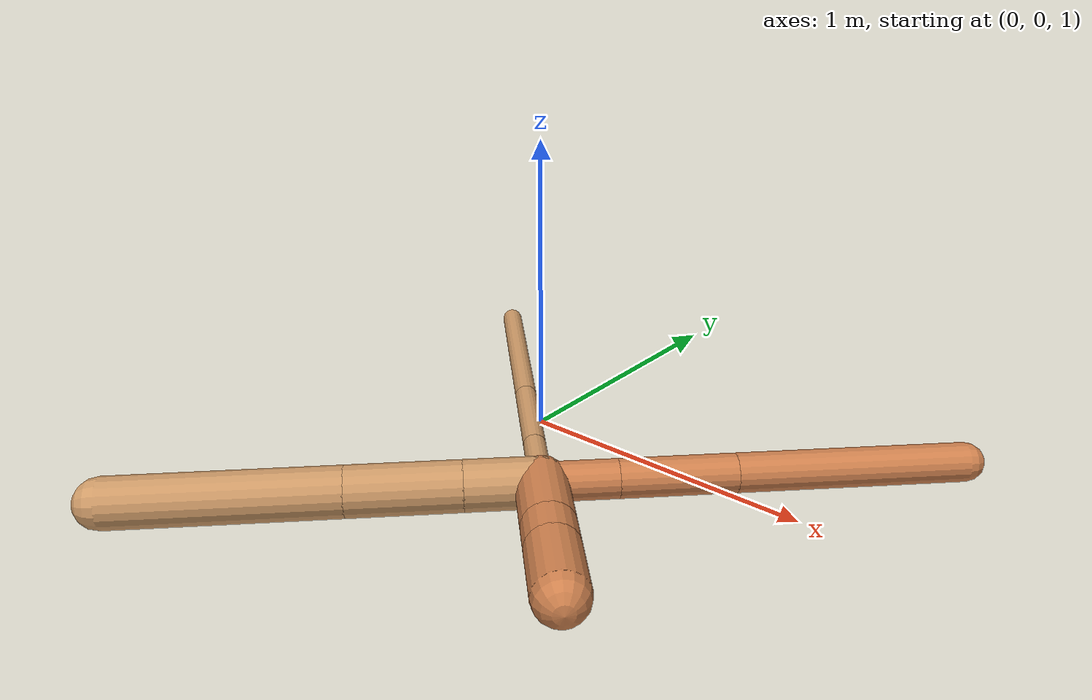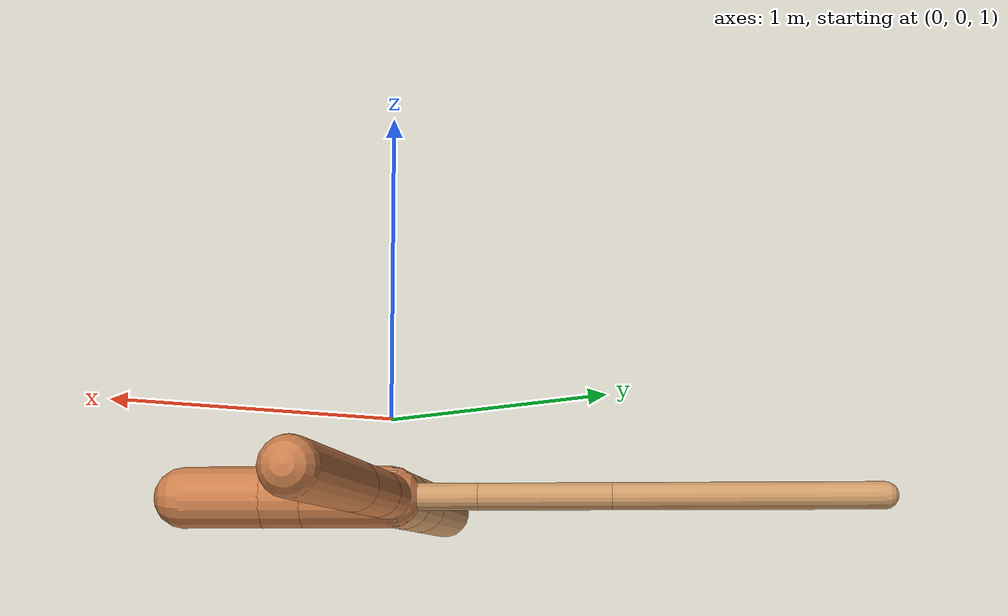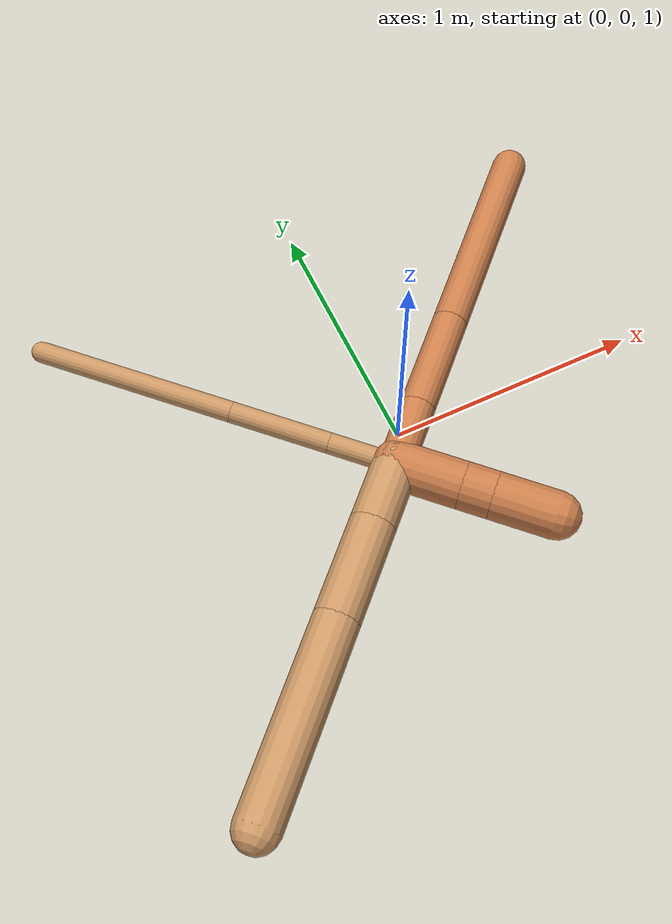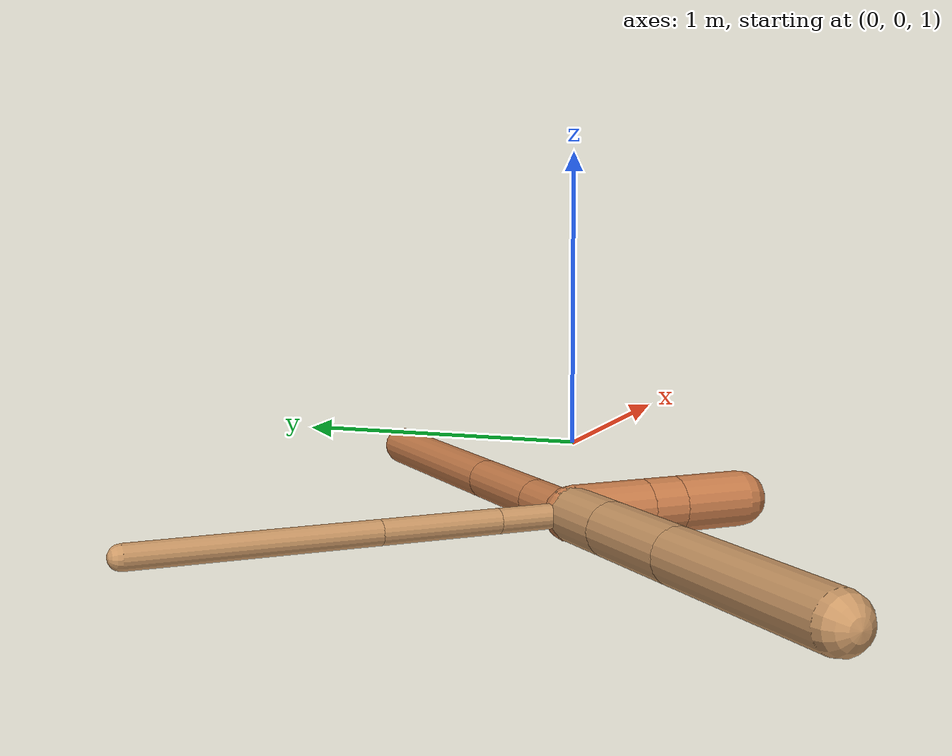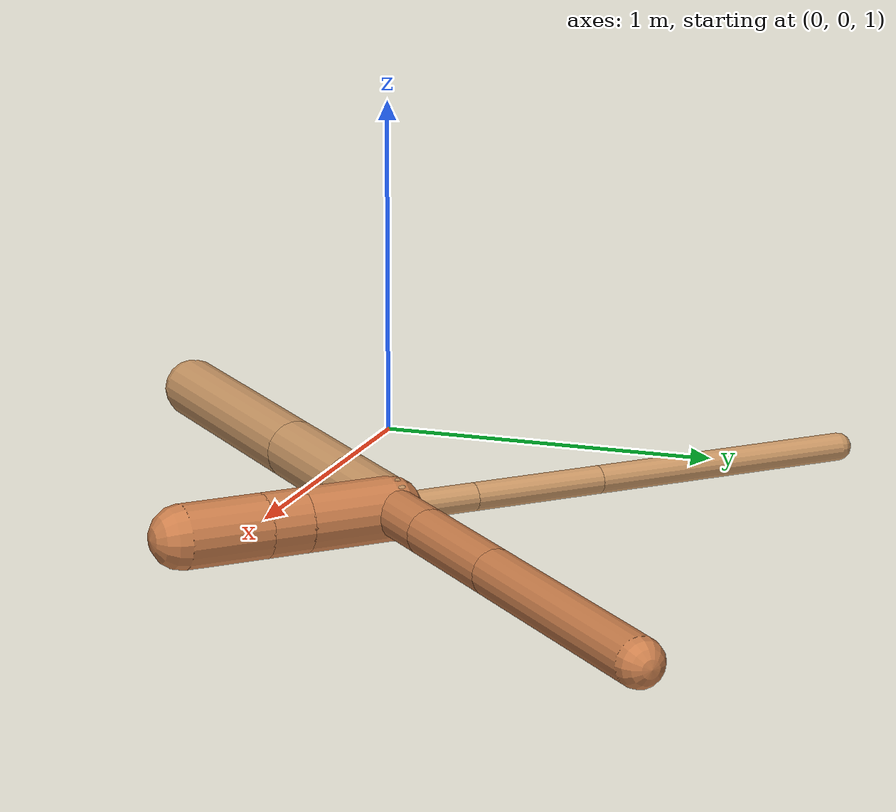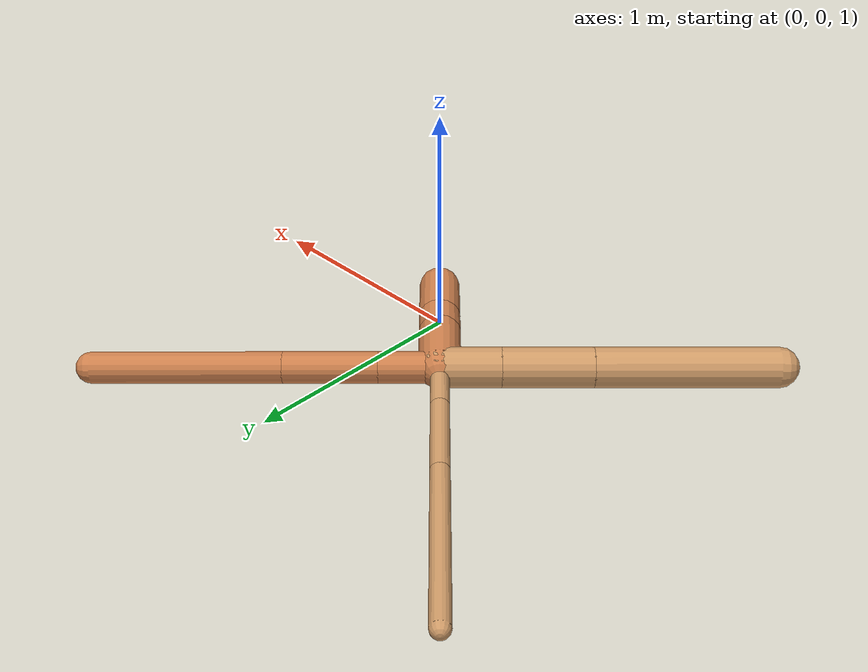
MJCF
<?xml version="1.0" ?>
<mujoco model="ant">

	<compiler angle="degree" coordinate="local" inertiafromgeom="true"/>

	<option integrator="RK4" timestep="0.01"/>

	<custom>

		<numeric data="0.0 0.0 0.55 1.0 0.0 0.0 0.0 0.0 1.0 0.0 -1.0 0.0 -1.0 0.0 1.0" name="init_qpos"/>

	</custom>

	<default>

		<joint armature="1" damping="1" limited="true"/>

		<geom conaffinity="0" condim="3" density="5.0" friction="1.5 0.1 0.1" margin="0.01" rgba="0.8 0.6 0.4 1"/>

	</default>

	<worldbody>

		<body name="torso" pos="0 0 0.75">

			<geom name="torso_geom" pos="0 0 0" size="0.09789557683448738" type="sphere"/>

			<!--joint armature="0" damping="0" limited="false" margin="0.01" name="root" pos="0 0 0" type="free"/-->

			<body name="front_left_leg" pos="0 0 0">

				<geom fromto="0 0 0 0.2 0.2 0" name="aux_1_geom" size="0.07421128612262799" type="capsule" rgba=".8 .5 .3 1"/>

				<body name="aux_1" pos="0.2 0.2 0">

					<joint axis="0 0 1" name="hip_1" pos="0.0 0.0 0.0" range="-40 40" type="hinge"/>

					<geom fromto="0 0 0 0.30931374868753636 0.30931374868753636 0" name="left_leg_geom" size="0.07421128612262799" type="capsule" rgba=".8 .5 .3 1"/>

					<body pos="0.30931374868753636 0.30931374868753636 0" name="front_left_foot">

						<joint axis="-1 1 0" name="ankle_1" pos="0.0 0.0 0.0" range="30 100" type="hinge"/>

						<geom fromto="0 0 0 0.6186274973750727 0.6186274973750727 0" name="left_ankle_geom" size="0.07421128612262799" type="capsule" rgba=".8 .5 .3 1"/>

					</body>

				</body>

			</body>

			<body name="front_right_leg" pos="0 0 0">

				<geom fromto="0 0 0 -0.2 0.2 0" name="aux_2_geom" size="0.044248493771262665" type="capsule"/>

				<body name="aux_2" pos="-0.2 0.2 0">

					<joint axis="0 0 1" name="hip_2" pos="0.0 0.0 0.0" range="-40 40" type="hinge"/>

					<geom fromto="0 0 0 -0.30257220539584073 0.30257220539584073 0" name="right_leg_geom" size="0.044248493771262665" type="capsule"/>

					<body pos="-0.30257220539584073 0.30257220539584073 0" name="front_right_foot">

						<joint axis="1 1 0" name="ankle_2" pos="0.0 0.0 0.0" range="-100 -30" type="hinge"/>

						<geom fromto="0 0 0 -0.6051444107916815 0.6051444107916815 0" name="right_ankle_geom" size="0.044248493771262665" type="capsule"/>

					</body>

				</body>

			</body>

			<body name="left_back_leg" pos="0 0 0">

				<geom fromto="0 0 0 -0.2 -0.2 0" name="aux_3_geom" size="0.09659568490921717" type="capsule"/>

				<body name="aux_3" pos="-0.2 -0.2 0">

					<joint axis="0 0 1" name="hip_3" pos="0.0 0.0 0.0" range="-40 40" type="hinge"/>

					<geom fromto="0 0 0 -0.2995922473387776 -0.2995922473387776 0" name="back_leg_geom" size="0.09659568490921717" type="capsule"/>

					<body pos="-0.2995922473387776 -0.2995922473387776 0" name="left_back_foot">

						<joint axis="-1 1 0" name="ankle_3" pos="0.0 0.0 0.0" range="-100 -30" type="hinge"/>

						<geom fromto="0 0 0 -0.5991844946775552 -0.5991844946775552 0" name="third_ankle_geom" size="0.09659568490921717" type="capsule"/>

					</body>

				</body>

			</body>

			<body name="right_back_leg" pos="0 0 0">

				<geom fromto="0 0 0 0.2 -0.2 0" name="aux_4_geom" size="0.10027187642921279" type="capsule" rgba=".8 .5 .3 1"/>

				<body name="aux_4" pos="0.2 -0.2 0">

					<joint axis="0 0 1" name="hip_4" pos="0.0 0.0 0.0" range="-40 40" type="hinge"/>

					<geom fromto="0 0 0 0.09230370330977218 -0.09230370330977218 0" name="rightback_leg_geom" size="0.10027187642921279" type="capsule" rgba=".8 .5 .3 1"/>

					<body pos="0.09230370330977218 -0.09230370330977218 0" name="right_back_foot">

						<joint axis="1 1 0" name="ankle_4" pos="0.0 0.0 0.0" range="30 100" type="hinge"/>

						<geom fromto="0 0 0 0.18460740661954436 -0.18460740661954436 0" name="fourth_ankle_geom" size="0.10027187642921279" type="capsule" rgba=".8 .5 .3 1"/>

					</body>

				</body>

			</body>

		</body>

	</worldbody>

	<actuator>

		<motor ctrllimited="true" ctrlrange="-1.0 1.0" joint="hip_4" gear="150"/>

		<motor ctrllimited="true" ctrlrange="-1.0 1.0" joint="ankle_4" gear="150"/>

		<motor ctrllimited="true" ctrlrange="-1.0 1.0" joint="hip_1" gear="150"/>

		<motor ctrllimited="true" ctrlrange="-1.0 1.0" joint="ankle_1" gear="150"/>

		<motor ctrllimited="true" ctrlrange="-1.0 1.0" joint="hip_2" gear="150"/>

		<motor ctrllimited="true" ctrlrange="-1.0 1.0" joint="ankle_2" gear="150"/>

		<motor ctrllimited="true" ctrlrange="-1.0 1.0" joint="hip_3" gear="150"/>

		<motor ctrllimited="true" ctrlrange="-1.0 1.0" joint="ankle_3" gear="150"/>

	</actuator>

</mujoco>
